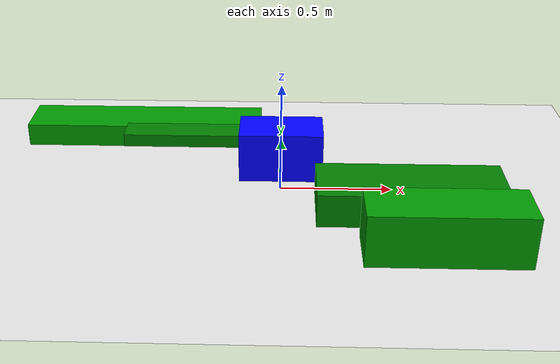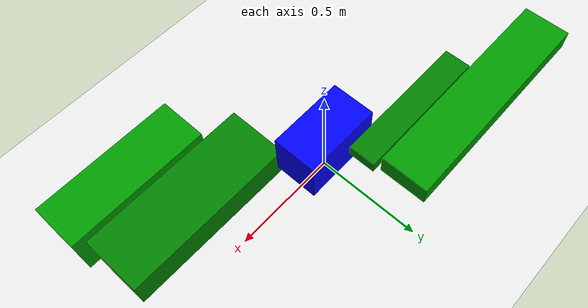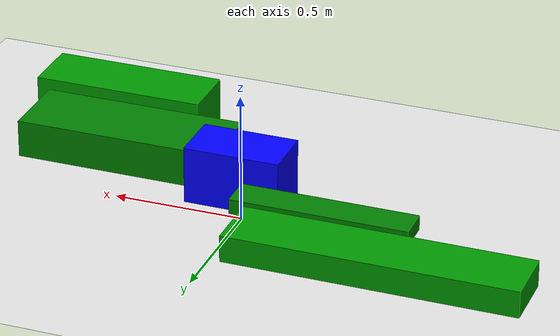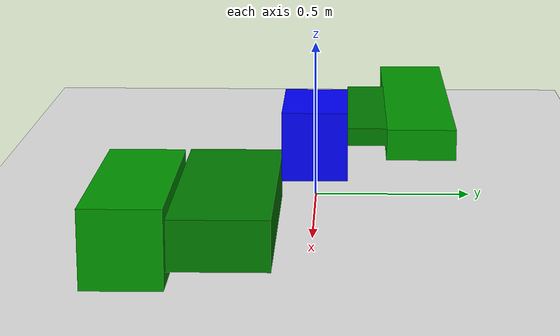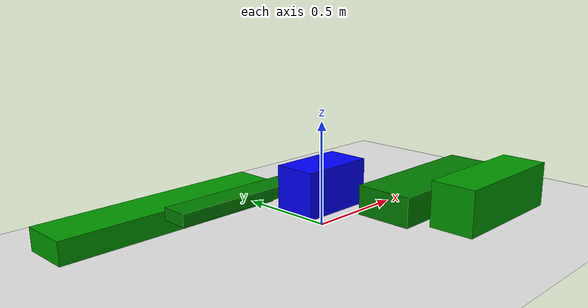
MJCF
<mujoco>
    <worldbody>
    <light diffuse=".5 .5 .5" pos="0 0 3" dir="0 0 -1"/>
    <geom type="plane" size="5 5 0.1" rgba=".9 0.9 0.9 1"/>
    <body name="main body" pos="0 0 .2">
        <joint type="free"/>
        <geom type="box" size="0.1823618432185498 0.10347852472478945 0.10960618824937188" rgba="0 0 1 1" mass="1"/>
        <site name="marker" pos="0 0 0" size="0.05"/>
        <site name="robot_center" pos="0 0 0" size="0.01"/>
        <body name="left_leg1" pos="-0.38 0.16803071267335523 -0.02040289132823906">
            <joint name="left_leg1_joint" type="hinge" axis="0 1 0" pos="0 0 0"/>
            <geom type="box" size="0.337457078141294 0.06455218794856579 0.028613444513081326" rgba="0 .5 0 1" mass="1"/>
            <body name="left_leg2" pos="-0.2664028669818799 0.1802081567358777 -0.04">
                <joint name="left_leg2_joint" type="hinge" axis="0 1 0" pos="0 0 0"/>
                <geom type="box" size="0.5475043629076538 0.1156559687873119 0.051449655258495056" rgba="0 .6 0 1" mass="1"/>
            </body>
        </body>
        <body name="right_leg1" pos="0.5473671382621346 -0.2475361944180854 -0.08929952428677262">
            <joint name="right_leg1_joint" type="hinge" axis="0 1 0" pos="0 0 0"/>
            <geom type="box" size="0.39752449761803 0.14405766969329595 0.07370081633151675" rgba="0 .5 0 1" mass="1"/>
            <body name="right_leg2" pos="0.1150039822423069 -0.25995009125388463 -0.010591158288174191">
                <joint name="right_leg2_joint" type="hinge" axis="0 1 0" pos="0 0 0"/>
                <geom type="box" size="0.33237558943717926 0.1158924215605887 0.12773692616278537" rgba="0 .6 0 1" mass="1"/>
            </body>
        </body>
    </body>
    </worldbody>
    <sensor>
        <framepos objtype="site" objname="marker"/>
        <velocimeter name="robot_velocity" site="robot_center"/>
    </sensor>
    <actuator>
        <position joint="left_leg1_joint" kp="10"/>
        <position joint="left_leg2_joint" kp="10"/>
        <position joint="right_leg1_joint" kp="10"/>
        <position joint="right_leg2_joint" kp="10"/>
    </actuator>
</mujoco>
